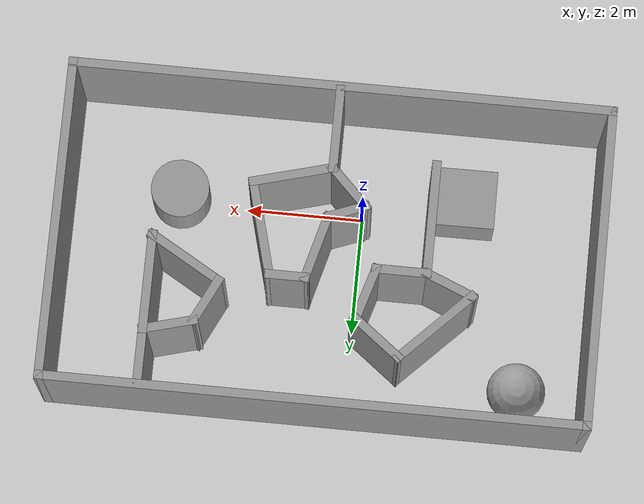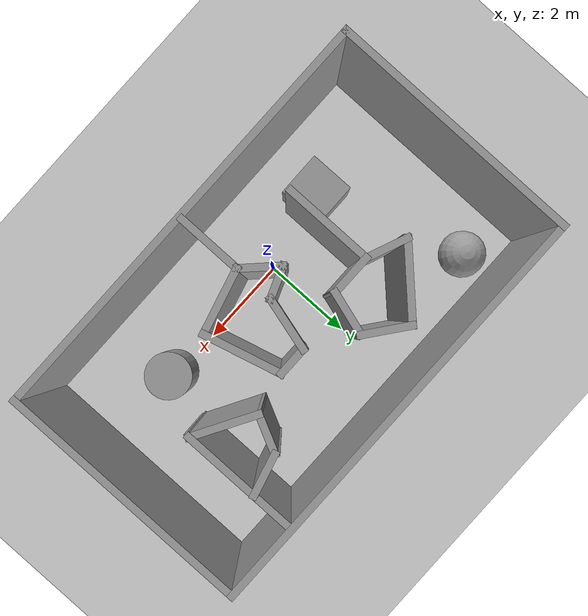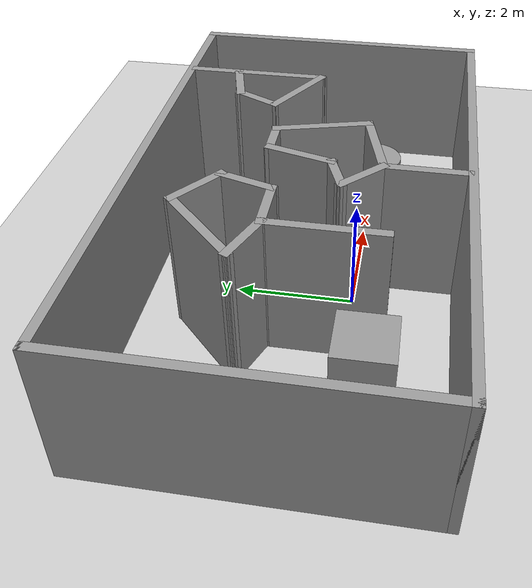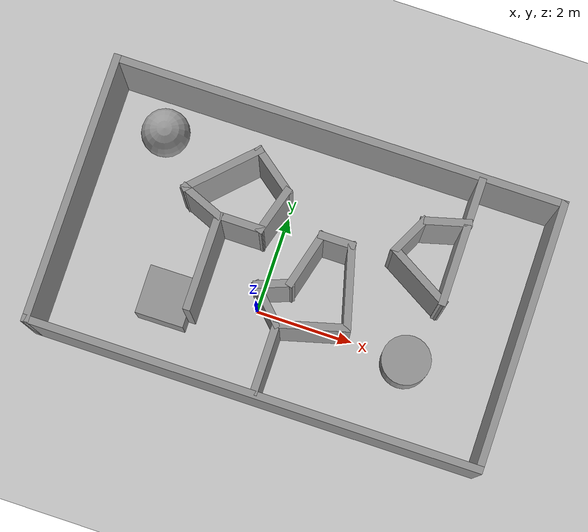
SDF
<sdf version="1.7">
 <world name="default">
  <light name="sun" type="directional">
   <pose>0 0 10 0 -0 0</pose>
   <diffuse>0.8 0.8 0.8 1</diffuse>
   <specular>0.2 0.2 0.2 1</specular>
   <attenuation>
    <range>1000</range>
    <constant>0.9</constant>
    <linear>0.01</linear>
    <quadratic>0.001</quadratic>
   </attenuation>
   <direction>-0.5 0.1 -0.9</direction>
   <spot><inner_angle>0</inner_angle><outer_angle>0</outer_angle><falloff>0</falloff></spot>
  </light>
  <model name="ground_plane">
   <static>1</static>
   <link name="link">
    <collision name="collision">
     <geometry><plane><normal>0 0 1</normal><size>100 100</size></plane></geometry>
     <surface>
      <contact><collide_bitmask>65535</collide_bitmask></contact>
      <friction><ode><mu>100</mu><mu2>50</mu2></ode></friction>
     </surface>
    </collision>
    <visual name="visual">
     <cast_shadows>0</cast_shadows>
     <geometry><plane><normal>0 0 1</normal><size>100 100</size></plane></geometry>
     <material>
      <script><uri>file://media/materials/scripts/gazebo.material</uri><name>Gazebo/Grey</name></script>
     </material>
    </visual>
   </link>
  </model>
  <physics type="ode">
   <real_time_update_rate>1000</real_time_update_rate>
   <max_step_size>0.001</max_step_size>
   <real_time_factor>1</real_time_factor>
   <ode>
    <solver>
     <type>quick</type>
     <iters>150</iters>
     <precon_iters>0</precon_iters>
     <sor>1.4</sor>
     <use_dynamic_moi_rescaling>1</use_dynamic_moi_rescaling>
    </solver>
    <constraints>
     <cfm>1e-05</cfm>
     <erp>0.2</erp>
     <contact_max_correcting_vel>2000</contact_max_correcting_vel>
     <contact_surface_layer>0.01</contact_surface_layer>
    </constraints>
   </ode>
  </physics>
  <scene><ambient>0.4 0.4 0.4 1</ambient><background>0.7 0.7 0.7 1</background><shadows>1</shadows></scene>
  <gravity>0 0 -9.8</gravity>
  <magnetic_field>6e-06 2.3e-05 -4.2e-05</magnetic_field>
  <atmosphere type="adiabatic"/>
  <spherical_coordinates>
   <surface_model>EARTH_WGS84</surface_model>
   <latitude_deg>0</latitude_deg>
   <longitude_deg>0</longitude_deg>
   <elevation>0</elevation>
   <heading_deg>0</heading_deg>
  </spherical_coordinates>
  <model name="buildings">
   <pose>0.51143 0.914274 0 0 -0 0</pose>
   <link name="Wall_1">
    <collision name="Wall_1_Collision">
     <geometry><box><size>5.5 0.15 2.5</size></box></geometry>
     <pose>0 0 1.25 0 -0 0</pose>
    </collision>
    <visual name="Wall_1_Visual">
     <pose>0 0 1.25 0 -0 0</pose>
     <geometry><box><size>5.5 0.15 2.5</size></box></geometry>
     <material>
      <script><uri>file://media/materials/scripts/gazebo.material</uri><name>Gazebo/Grey</name></script>
      <ambient>1 1 1 1</ambient>
     </material>
     <meta><layer>0</layer></meta>
    </visual>
    <pose>-4.55 0 0 0 -0 1.5708</pose>
   </link>
   <link name="Wall_10">
    <collision name="Wall_10_Collision">
     <geometry><box><size>1.11795 0.15 2.5</size></box></geometry>
     <pose>0 0 1.25 0 -0 0</pose>
    </collision>
    <visual name="Wall_10_Visual">
     <pose>0 0 1.25 0 -0 0</pose>
     <geometry><box><size>1.11795 0.15 2.5</size></box></geometry>
     <material>
      <script><uri>file://media/materials/scripts/gazebo.material</uri><name>Gazebo/Grey</name></script>
      <ambient>1 1 1 1</ambient>
     </material>
     <meta><layer>0</layer></meta>
    </visual>
    <pose>-0.958512 1.53153 0 0 -0 -0.654877</pose>
   </link>
   <link name="Wall_11">
    <collision name="Wall_11_Collision">
     <geometry><box><size>1.04909 0.15 2.5</size></box></geometry>
     <pose>0 0 1.25 0 -0 0</pose>
    </collision>
    <visual name="Wall_11_Visual">
     <pose>0 0 1.25 0 -0 0</pose>
     <geometry><box><size>1.04909 0.15 2.5</size></box></geometry>
     <material>
      <script><uri>file://media/materials/scripts/gazebo.material</uri><name>Gazebo/Grey</name></script>
      <ambient>1 1 1 1</ambient>
     </material>
     <meta><layer>0</layer></meta>
    </visual>
    <pose>-0.714782 0.806014 0 0 -0 -1.86097</pose>
   </link>
   <link name="Wall_12">
    <collision name="Wall_12_Collision">
     <geometry><box><size>1 0.15 2.5</size></box></geometry>
     <pose>0 0 1.25 0 -0 0</pose>
    </collision>
    <visual name="Wall_12_Visual">
     <pose>0 0 1.25 0 -0 0</pose>
     <geometry><box><size>1 0.15 2.5</size></box></geometry>
     <material>
      <script><uri>file://media/materials/scripts/gazebo.material</uri><name>Gazebo/Grey</name></script>
      <ambient>1 1 1 1</ambient>
     </material>
     <meta><layer>0</layer></meta>
    </visual>
    <pose>-1.2684 0.375264 0 0 -0 3.14159</pose>
   </link>
   <link name="Wall_14">
    <collision name="Wall_14_Collision">
     <geometry><box><size>1.25 0.15 2.5</size></box></geometry>
     <pose>0 0 1.25 0 -0 0</pose>
    </collision>
    <visual name="Wall_14_Visual">
     <pose>0 0 1.25 0 -0 0</pose>
     <geometry><box><size>1.25 0.15 2.5</size></box></geometry>
     <material>
      <script><uri>file://media/materials/scripts/gazebo.material</uri><name>Gazebo/Grey</name></script>
      <ambient>1 1 1 1</ambient>
     </material>
     <meta><layer>0</layer></meta>
    </visual>
    <pose>0.176947 0.101523 0 0 -0 1.309</pose>
   </link>
   <link name="Wall_15">
    <collision name="Wall_15_Collision">
     <geometry><box><size>0.75 0.15 2.5</size></box></geometry>
     <pose>0 0 1.25 0 -0 0</pose>
    </collision>
    <visual name="Wall_15_Visual">
     <pose>0 0 1.25 0 -0 0</pose>
     <geometry><box><size>0.75 0.15 2.5</size></box></geometry>
     <material>
      <script><uri>file://media/materials/scripts/gazebo.material</uri><name>Gazebo/Grey</name></script>
      <ambient>1 1 1 1</ambient>
     </material>
     <meta><layer>0</layer></meta>
    </visual>
    <pose>0.619297 0.632782 0 0 -0 0</pose>
   </link>
   <link name="Wall_16">
    <collision name="Wall_16_Collision">
     <geometry><box><size>1.75 0.15 2.5</size></box></geometry>
     <pose>0 0 1.25 0 -0 0</pose>
    </collision>
    <visual name="Wall_16_Visual">
     <pose>0 0 1.25 0 -0 0</pose>
     <geometry><box><size>1.75 0.15 2.5</size></box></geometry>
     <material>
      <script><uri>file://media/materials/scripts/gazebo.material</uri><name>Gazebo/Grey</name></script>
      <ambient>1 1 1 1</ambient>
     </material>
     <meta><layer>0</layer></meta>
    </visual>
    <pose>1.12635 -0.139959 0 0 -0 -1.309</pose>
   </link>
   <link name="Wall_17">
    <collision name="Wall_17_Collision">
     <geometry><box><size>1.5 0.15 2.5</size></box></geometry>
     <pose>0 0 1.25 0 -0 0</pose>
    </collision>
    <visual name="Wall_17_Visual">
     <pose>0 0 1.25 0 -0 0</pose>
     <geometry><box><size>1.5 0.15 2.5</size></box></geometry>
     <material>
      <script><uri>file://media/materials/scripts/gazebo.material</uri><name>Gazebo/Grey</name></script>
      <ambient>1 1 1 1</ambient>
     </material>
     <meta><layer>0</layer></meta>
    </visual>
    <pose>0.681408 -1.0874 0 0 -0 -2.87979</pose>
   </link>
   <link name="Wall_18">
    <collision name="Wall_18_Collision">
     <geometry><box><size>1 0.15 2.5</size></box></geometry>
     <pose>0 0 1.25 0 -0 0</pose>
    </collision>
    <visual name="Wall_18_Visual">
     <pose>0 0 1.25 0 -0 0</pose>
     <geometry><box><size>1 0.15 2.5</size></box></geometry>
     <material>
      <script><uri>file://media/materials/scripts/gazebo.material</uri><name>Gazebo/Grey</name></script>
      <ambient>1 1 1 1</ambient>
     </material>
     <meta><layer>0</layer></meta>
    </visual>
    <pose>-0.271112 -0.961584 0 0 -0 2.35619</pose>
   </link>
   <link name="Wall_19">
    <collision name="Wall_19_Collision">
     <geometry><box><size>0.798865 0.15 2.5</size></box></geometry>
     <pose>0 0 1.25 0 -0 0</pose>
    </collision>
    <visual name="Wall_19_Visual">
     <pose>0 0 1.25 0 -0 0</pose>
     <geometry><box><size>0.798865 0.15 2.5</size></box></geometry>
     <material>
      <script><uri>file://media/materials/scripts/gazebo.material</uri><name>Gazebo/Grey</name></script>
      <ambient>1 1 1 1</ambient>
     </material>
     <meta><layer>0</layer></meta>
    </visual>
    <pose>-0.268518 -0.5454 0 0 -0 0.364531</pose>
   </link>
   <link name="Wall_2">
    <collision name="Wall_2_Collision">
     <geometry><box><size>9.25 0.15 2.5</size></box></geometry>
     <pose>0 0 1.25 0 -0 0</pose>
    </collision>
    <visual name="Wall_2_Visual">
     <pose>0 0 1.25 0 -0 0</pose>
     <geometry><box><size>9.25 0.15 2.5</size></box></geometry>
     <material>
      <script><uri>file://media/materials/scripts/gazebo.material</uri><name>Gazebo/Grey</name></script>
      <ambient>1 1 1 1</ambient>
     </material>
     <meta><layer>0</layer></meta>
    </visual>
    <pose>0 2.675 0 0 -0 0</pose>
   </link>
   <link name="Wall_21">
    <collision name="Wall_21_Collision">
     <geometry><box><size>1 0.15 2.5</size></box></geometry>
     <pose>0 0 1.25 0 -0 0</pose>
    </collision>
    <visual name="Wall_21_Visual">
     <pose>0 0 1.25 0 -0 0</pose>
     <geometry><box><size>1 0.15 2.5</size></box></geometry>
     <material>
      <script><uri>file://media/materials/scripts/gazebo.material</uri><name>Gazebo/Grey</name></script>
      <ambient>1 1 1 1</ambient>
     </material>
     <meta><layer>0</layer></meta>
    </visual>
    <pose>2.50361 1.63526 0 0 -0 0.261799</pose>
   </link>
   <link name="Wall_22">
    <collision name="Wall_22_Collision">
     <geometry><box><size>1.75 0.15 2.5</size></box></geometry>
     <pose>0 0 1.25 0 -0 0</pose>
    </collision>
    <visual name="Wall_22_Visual">
     <pose>0 0 1.25 0 -0 0</pose>
     <geometry><box><size>1.75 0.15 2.5</size></box></geometry>
     <material>
      <script><uri>file://media/materials/scripts/gazebo.material</uri><name>Gazebo/Grey</name></script>
      <ambient>1 1 1 1</ambient>
     </material>
     <meta><layer>0</layer></meta>
    </visual>
    <pose>2.91413 0.94526 0 0 -0 -1.5708</pose>
   </link>
   <link name="Wall_23">
    <collision name="Wall_23_Collision">
     <geometry><box><size>1.5 0.15 2.5</size></box></geometry>
     <pose>0 0 1.25 0 -0 0</pose>
    </collision>
    <visual name="Wall_23_Visual">
     <pose>0 0 1.25 0 -0 0</pose>
     <geometry><box><size>1.5 0.15 2.5</size></box></geometry>
     <material>
      <script><uri>file://media/materials/scripts/gazebo.material</uri><name>Gazebo/Grey</name></script>
      <ambient>1 1 1 1</ambient>
     </material>
     <meta><layer>0</layer></meta>
    </visual>
    <pose>2.32957 0.48276 0 0 -0 2.61799</pose>
   </link>
   <link name="Wall_24">
    <collision name="Wall_24_Collision">
     <geometry><box><size>0.936258 0.15 2.5</size></box></geometry>
     <pose>0 0 1.25 0 -0 0</pose>
    </collision>
    <visual name="Wall_24_Visual">
     <pose>0 0 1.25 0 -0 0</pose>
     <geometry><box><size>0.936258 0.15 2.5</size></box></geometry>
     <material>
      <script><uri>file://media/materials/scripts/gazebo.material</uri><name>Gazebo/Grey</name></script>
      <ambient>1 1 1 1</ambient>
     </material>
     <meta><layer>0</layer></meta>
    </visual>
    <pose>1.91905 1.17276 0 0 -0 1.11216</pose>
   </link>
   <link name="Wall_26">
    <collision name="Wall_26_Collision">
     <geometry><box><size>2 0.15 2.5</size></box></geometry>
     <pose>0 0 1.25 0 -0 0</pose>
    </collision>
    <visual name="Wall_26_Visual">
     <pose>0 0 1.25 0 -0 0</pose>
     <geometry><box><size>2 0.15 2.5</size></box></geometry>
     <material>
      <script><uri>file://media/materials/scripts/gazebo.material</uri><name>Gazebo/Grey</name></script>
      <ambient>1 1 1 1</ambient>
     </material>
     <meta><layer>0</layer></meta>
    </visual>
    <pose>-1.6934 -0.549736 0 0 -0 -1.5708</pose>
   </link>
   <link name="Wall_28">
    <collision name="Wall_28_Collision">
     <geometry><box><size>1.5 0.15 2.5</size></box></geometry>
     <pose>0 0 1.25 0 -0 0</pose>
    </collision>
    <visual name="Wall_28_Visual">
     <pose>0 0 1.25 0 -0 0</pose>
     <geometry><box><size>1.5 0.15 2.5</size></box></geometry>
     <material>
      <script><uri>file://media/materials/scripts/gazebo.material</uri><name>Gazebo/Grey</name></script>
      <ambient>1 1 1 1</ambient>
     </material>
     <meta><layer>0</layer></meta>
    </visual>
    <pose>0.029408 -1.93711 0 0 -0 -1.5708</pose>
   </link>
   <link name="Wall_3">
    <collision name="Wall_3_Collision">
     <geometry><box><size>5.5 0.15 2.5</size></box></geometry>
     <pose>0 0 1.25 0 -0 0</pose>
    </collision>
    <visual name="Wall_3_Visual">
     <pose>0 0 1.25 0 -0 0</pose>
     <geometry><box><size>5.5 0.15 2.5</size></box></geometry>
     <material>
      <script><uri>file://media/materials/scripts/gazebo.material</uri><name>Gazebo/Grey</name></script>
      <ambient>1 1 1 1</ambient>
     </material>
     <meta><layer>0</layer></meta>
    </visual>
    <pose>4.55 0 0 0 -0 -1.5708</pose>
   </link>
   <link name="Wall_30">
    <collision name="Wall_30_Collision">
     <geometry><box><size>1 0.15 2.5</size></box></geometry>
     <pose>0 0 1.25 0 -0 0</pose>
    </collision>
    <visual name="Wall_30_Visual">
     <pose>0 0 1.25 0 -0 0</pose>
     <geometry><box><size>1 0.15 2.5</size></box></geometry>
     <material>
      <script><uri>file://media/materials/scripts/gazebo.material</uri><name>Gazebo/Grey</name></script>
      <ambient>1 1 1 1</ambient>
     </material>
     <meta><layer>0</layer></meta>
    </visual>
    <pose>2.91413 2.17026 0 0 -0 1.5708</pose>
   </link>
   <link name="Wall_4">
    <collision name="Wall_4_Collision">
     <geometry><box><size>9.25 0.15 2.5</size></box></geometry>
     <pose>0 0 1.25 0 -0 0</pose>
    </collision>
    <visual name="Wall_4_Visual">
     <pose>0 0 1.25 0 -0 0</pose>
     <geometry><box><size>9.25 0.15 2.5</size></box></geometry>
     <material>
      <script><uri>file://media/materials/scripts/gazebo.material</uri><name>Gazebo/Grey</name></script>
      <ambient>1 1 1 1</ambient>
     </material>
     <meta><layer>0</layer></meta>
    </visual>
    <pose>0 -2.675 0 0 -0 3.14159</pose>
   </link>
   <link name="Wall_5">
    <collision name="Wall_5_Collision">
     <geometry><box><size>0.15 0.15 2.5</size></box></geometry>
     <pose>0 0 1.25 0 -0 0</pose>
    </collision>
    <visual name="Wall_5_Visual">
     <pose>0 0 1.25 0 -0 0</pose>
     <geometry><box><size>0.15 0.15 2.5</size></box></geometry>
     <material>
      <script><uri>file://media/materials/scripts/gazebo.material</uri><name>Gazebo/Grey</name></script>
      <ambient>1 1 1 1</ambient>
     </material>
     <meta><layer>0</layer></meta>
    </visual>
    <pose>-4.55 -2.675 0 0 -0 0</pose>
   </link>
   <link name="Wall_8">
    <collision name="Wall_8_Collision">
     <geometry><box><size>0.99327 0.15 2.5</size></box></geometry>
     <pose>0 0 1.25 0 -0 0</pose>
    </collision>
    <visual name="Wall_8_Visual">
     <pose>0 0 1.25 0 -0 0</pose>
     <geometry><box><size>0.99327 0.15 2.5</size></box></geometry>
     <material>
      <script><uri>file://media/materials/scripts/gazebo.material</uri><name>Gazebo/Grey</name></script>
      <ambient>1 1 1 1</ambient>
     </material>
     <meta><layer>0</layer></meta>
    </visual>
    <pose>-2.08357 0.535099 0 0 -0 2.75279</pose>
   </link>
   <link name="Wall_9">
    <collision name="Wall_9_Collision">
     <geometry><box><size>1.75 0.15 2.5</size></box></geometry>
     <pose>0 0 1.25 0 -0 0</pose>
    </collision>
    <visual name="Wall_9_Visual">
     <pose>0 0 1.25 0 -0 0</pose>
     <geometry><box><size>1.75 0.15 2.5</size></box></geometry>
     <material>
      <script><uri>file://media/materials/scripts/gazebo.material</uri><name>Gazebo/Grey</name></script>
      <ambient>1 1 1 1</ambient>
     </material>
     <meta><layer>0</layer></meta>
    </visual>
    <pose>-1.90805 1.26062 0 0 -0 0.785398</pose>
   </link>
   <static>1</static>
  </model>
  <model name="unit_box">
   <pose>-1.75871 -0.365527 0.5 0 -0 0.006261</pose>
   <link name="link">
    <inertial>
     <mass>1</mass>
     <inertia>
      <ixx>0.166667</ixx>
      <ixy>0</ixy>
      <ixz>0</ixz>
      <iyy>0.166667</iyy>
      <iyz>0</iyz>
      <izz>0.166667</izz>
     </inertia>
    </inertial>
    <collision name="collision"><geometry><box><size>1 1 1</size></box></geometry></collision>
    <visual name="visual">
     <geometry><box><size>1 1 1</size></box></geometry>
     <material>
      <script><name>Gazebo/Grey</name><uri>file://media/materials/scripts/gazebo.material</uri></script>
     </material>
    </visual>
   </link>
  </model>
  <model name="unit_sphere">
   <pose>-2.89452 2.81985 0.5 0 -0 0</pose>
   <link name="link">
    <inertial>
     <mass>1</mass>
     <inertia><ixx>0.1</ixx><ixy>0</ixy><ixz>0</ixz><iyy>0.1</iyy><iyz>0</iyz><izz>0.1</izz></inertia>
    </inertial>
    <collision name="collision"><geometry><sphere><radius>0.5</radius></sphere></geometry></collision>
    <visual name="visual">
     <geometry><sphere><radius>0.5</radius></sphere></geometry>
     <material>
      <script><name>Gazebo/Grey</name><uri>file://media/materials/scripts/gazebo.material</uri></script>
     </material>
    </visual>
   </link>
  </model>
  <model name="unit_cylinder">
   <pose>3.13873 -0.077986 0.499993 4e-06 4e-06 -0</pose>
   <link name="link">
    <inertial>
     <mass>1</mass>
     <inertia><ixx>0.145833</ixx><ixy>0</ixy><ixz>0</ixz><iyy>0.145833</iyy><iyz>0</iyz><izz>0.125</izz></inertia>
    </inertial>
    <collision name="collision">
     <geometry><cylinder><radius>0.5</radius><length>1</length></cylinder></geometry>
    </collision>
    <visual name="visual">
     <geometry><cylinder><radius>0.5</radius><length>1</length></cylinder></geometry>
     <material>
      <script><name>Gazebo/Grey</name><uri>file://media/materials/scripts/gazebo.material</uri></script>
     </material>
    </visual>
   </link>
  </model>
 </world>
</sdf>
